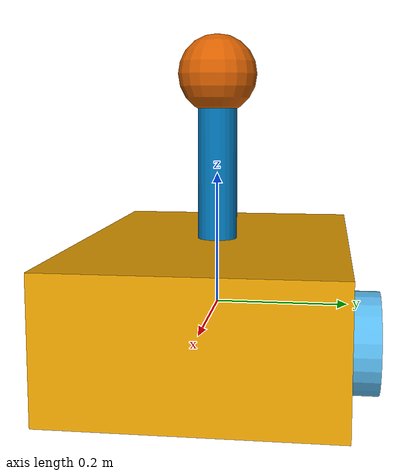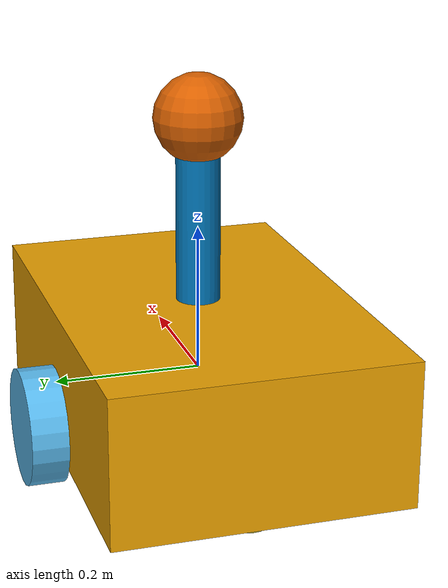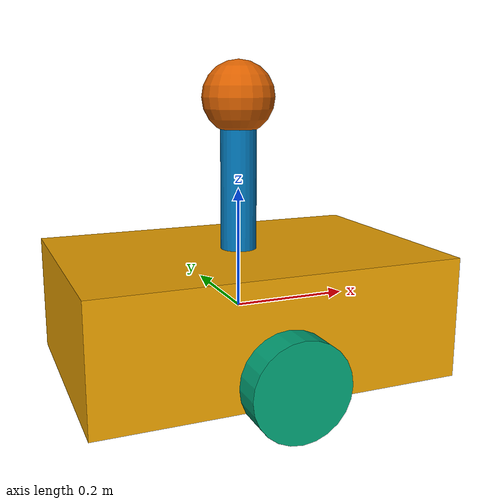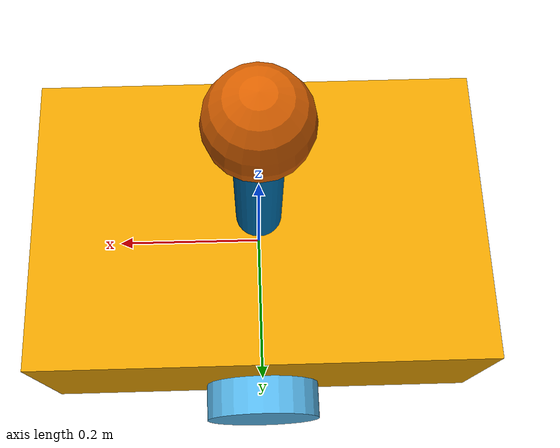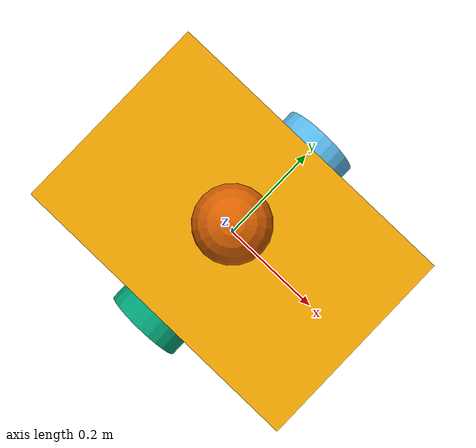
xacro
<?xml version="1.0"?>
<robot xmlns:xacro="http://www.ros.org/wiki/xacro" name="explorabot">

  <!-- Global Properties -->
  <xacro:property name="body_l" value="0.6"/>
  <xacro:property name="body_w" value="0.4"/>
  <xacro:property name="body_h" value="0.2"/>

  <xacro:property name="wheel_r" value="0.08"/>
  <xacro:property name="wheel_w" value="0.05"/>

  <!-- Base Link -->
  <link name="base_link">
    <visual>
      <geometry>
        <box size="${body_l} ${body_w} ${body_h}"/>
      </geometry>
    </visual>

    <collision>
      <geometry>
        <box size="${body_l} ${body_w} ${body_h}"/>
      </geometry>
    </collision>

    <inertial>
      <mass value="10"/>
      <inertia ixx="1e-3" iyy="1e-3" izz="1e-3"
               ixy="0" ixz="0" iyz="0"/>
    </inertial>
  </link>

  <!-- Left Wheel -->
  <link name="left_wheel">
    <visual>
      <origin rpy="1.5708 0 0"/>
      <geometry>
        <cylinder radius="${wheel_r}" length="${wheel_w}"/>
      </geometry>
    </visual>

    <collision>
      <origin rpy="1.5708 0 0"/>
      <geometry>
        <cylinder radius="${wheel_r}" length="${wheel_w}"/>
      </geometry>
    </collision>

    <inertial>
      <mass value="1"/>
      <inertia ixx="1e-4" iyy="1e-4" izz="1e-4"
               ixy="0" ixz="0" iyz="0"/>
    </inertial>
  </link>

  <joint name="left_wheel_joint" type="continuous">
    <parent link="base_link"/>
    <child link="left_wheel"/>
    <origin xyz="0 0.225 -0.06" rpy="0 0 0"/>
    <axis xyz="0 1 0"/>
    <limit effort="5" velocity="5"/>
  </joint>

  <!-- Right Wheel -->
  <link name="right_wheel">
    <visual>
      <origin rpy="1.5708 0 0"/>
      <geometry>
        <cylinder radius="${wheel_r}" length="${wheel_w}"/>
      </geometry>
    </visual>

    <collision>
      <origin rpy="1.5708 0 0"/>
      <geometry>
        <cylinder radius="${wheel_r}" length="${wheel_w}"/>
      </geometry>
    </collision>

    <inertial>
      <mass value="1"/>
      <inertia ixx="1e-4" iyy="1e-4" izz="1e-4"
               ixy="0" ixz="0" iyz="0"/>
    </inertial>
  </link>

  <joint name="right_wheel_joint" type="continuous">
    <parent link="base_link"/>
    <child link="right_wheel"/>
    <origin xyz="0 -0.225 -0.06" rpy="0 0 0"/>
    <axis xyz="0 1 0"/>
    <limit effort="5" velocity="5"/>
  </joint>

  <!-- Rear Support Wheel -->
  <link name="rear_wheel">
    <visual>
      <geometry>
        <sphere radius="0.05"/>
      </geometry>
    </visual>

    <collision>
      <geometry>
        <sphere radius="0.05"/>
      </geometry>
    </collision>

    <inertial>
      <mass value="0.5"/>
      <inertia ixx="1e-4" iyy="1e-4" izz="1e-4"
               ixy="0" ixz="0" iyz="0"/>
    </inertial>
  </link>

  <joint name="rear_wheel_joint" type="fixed">
    <parent link="base_link"/>
    <child link="rear_wheel"/>
    <origin xyz="-0.22 0 -0.09" rpy="0 0 0"/>
  </joint>

  <!-- Mast -->
  <link name="mast_link">
    <visual>
      <geometry>
        <cylinder radius="0.03" length="0.3"/>
      </geometry>
    </visual>

    <collision>
      <geometry>
        <cylinder radius="0.03" length="0.3"/>
      </geometry>
    </collision>

    <inertial>
      <mass value="0.5"/>
      <inertia ixx="1e-4" iyy="1e-4" izz="1e-4"
               ixy="0" ixz="0" iyz="0"/>
    </inertial>
  </link>

  <joint name="mast_joint" type="prismatic">
    <parent link="base_link"/>
    <child link="mast_link"/>
    <origin xyz="0 0 0.15" rpy="0 0 0"/>
    <axis xyz="0 0 1"/>
    <limit lower="0" upper="0.25" effort="10" velocity="0.2"/>
  </joint>

  <!-- Sensor Head -->
  <link name="sensor_head">
    <visual>
      <geometry>
        <sphere radius="0.06"/>
      </geometry>
    </visual>

    <collision>
      <geometry>
        <sphere radius="0.06"/>
      </geometry>
    </collision>

    <inertial>
      <mass value="0.3"/>
      <inertia ixx="1e-4" iyy="1e-4" izz="1e-4"
               ixy="0" ixz="0" iyz="0"/>
    </inertial>
  </link>

  <joint name="sensor_joint" type="revolute">
    <parent link="mast_link"/>
    <child link="sensor_head"/>
    <origin xyz="0 0 0.2" rpy="0 0 0"/>
    <axis xyz="0 0 1"/>
    <limit lower="-1.57" upper="1.57" effort="5" velocity="1"/>
  </joint>

  <!-- Camera Optical Frame (REQUIRED for RViz Camera) -->
  <link name="sensor_head_optical_frame"/>

  <joint name="sensor_head_optical_joint" type="fixed">
    <parent link="sensor_head"/>
    <child link="sensor_head_optical_frame"/>
    <origin xyz="0 0 0" rpy="-1.5708 0 -1.5708"/>
  </joint>

  <!-- Camera Sensor -->
  <gazebo reference="sensor_head">
    <sensor name="camera_sensor" type="camera">
      <always_on>true</always_on>
      <update_rate>10</update_rate>
      <visualize>true</visualize>

      <camera>
        <horizontal_fov>1.047</horizontal_fov>
        <image>
          <width>320</width>
          <height>240</height>
          <format>R8G8B8</format>
        </image>
        <clip>
          <near>0.1</near>
          <far>10.0</far>
        </clip>
      </camera>

      <plugin name="camera_plugin" filename="libgazebo_ros_camera.so">
        <ros>
          <namespace>/explorabot</namespace>
        </ros>
        <camera_name>camera</camera_name>
        <image_topic_name>image_raw</image_topic_name>
        <camera_info_topic_name>camera_info</camera_info_topic_name>
        <frame_name>sensor_head_optical_frame</frame_name>
      </plugin>
    </sensor>
  </gazebo>

  <!-- LiDAR Sensor -->
  <gazebo reference="sensor_head">
    <sensor name="lidar_sensor" type="ray">
      <always_on>true</always_on>
      <update_rate>10</update_rate>
      <visualize>true</visualize>

      <ray>
        <scan>
          <horizontal>
            <samples>360</samples>
            <resolution>1</resolution>
            <min_angle>-3.14</min_angle>
            <max_angle>3.14</max_angle>
          </horizontal>
        </scan>

        <range>
          <min>0.12</min>
          <max>10.0</max>
          <resolution>0.01</resolution>
        </range>
      </ray>

      <plugin name="lidar_plugin" filename="libgazebo_ros_ray_sensor.so">
        <ros>
          <namespace>/explorabot</namespace>
        </ros>
        <output_type>sensor_msgs/LaserScan</output_type>
        <topic_name>scan</topic_name>
        <frame_name>sensor_head</frame_name>
      </plugin>
    </sensor>
  </gazebo>

</robot>
